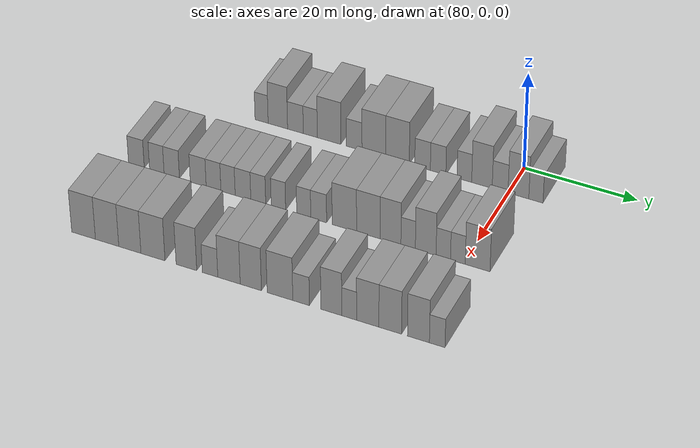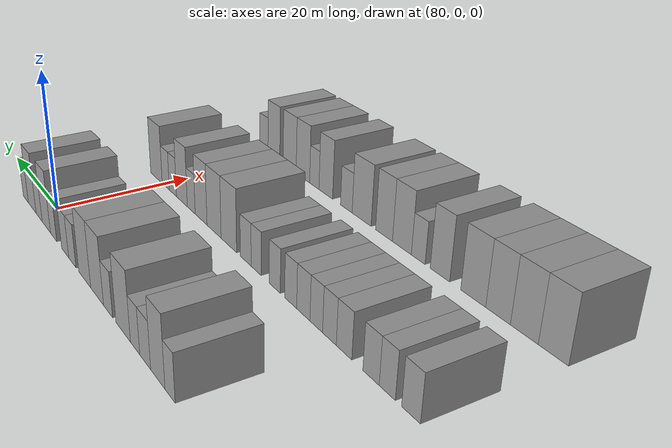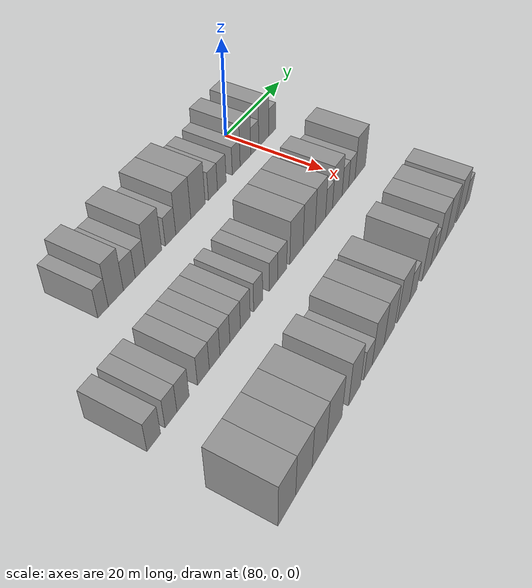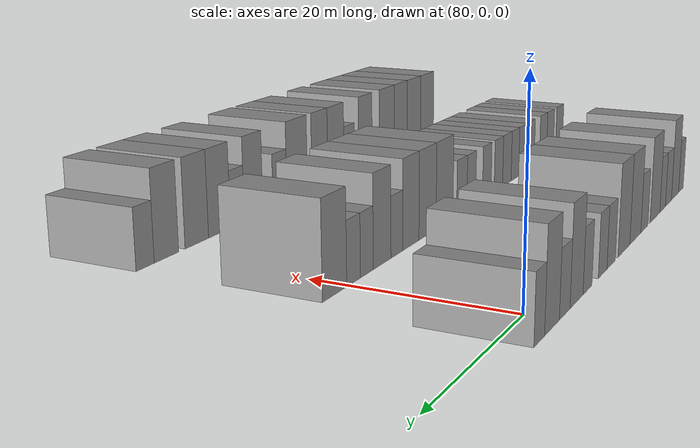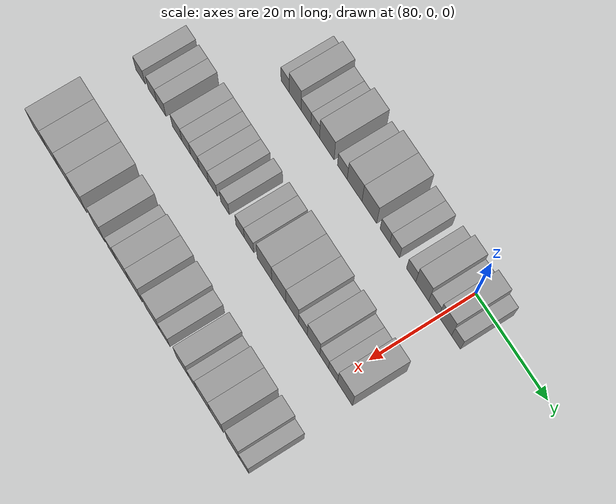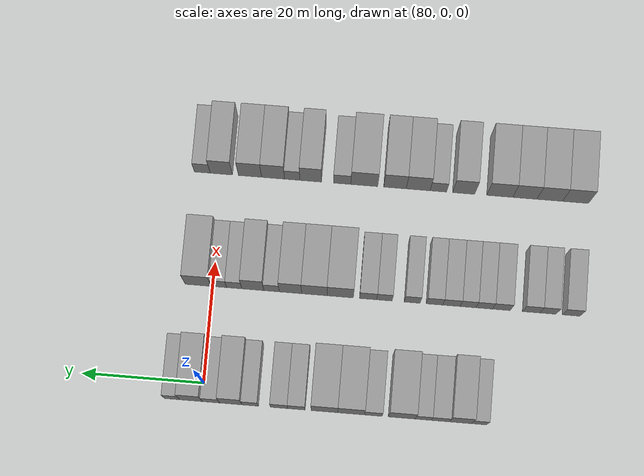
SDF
<sdf version="1.6">
 <world name="default">
  <model name="building_597">
   <static>1</static>
   <pose>82.0000 -45.0844 0 0.000000 0.000000 0.000000</pose>
   <link name="link">
    <pose>0 0 3.00 0 0 0</pose>
    <collision name="collision"><geometry><box><size>10.0000 2.4602 6.0000</size></box></geometry></collision>
    <visual name="visual">
     <cast_shadows>0</cast_shadows>
     <geometry><box><size>10.0000 2.4602 6.0000</size></box></geometry>
     <material>
      <script>
       <uri>model://grey_wall/materials/scripts</uri>
       <uri>model://grey_wall/materials/textures</uri>
       <name>vrc/grey_wall</name>
      </script>
     </material>
    </visual>
   </link>
  </model>
  <model name="building_598">
   <static>1</static>
   <pose>82.0000 -42.0354 0 0.000000 0.000000 0.000000</pose>
   <link name="link">
    <pose>0 0 4.50 0 0 0</pose>
    <collision name="collision"><geometry><box><size>10.0000 3.6379 9.0000</size></box></geometry></collision>
    <visual name="visual">
     <cast_shadows>0</cast_shadows>
     <geometry><box><size>10.0000 3.6379 9.0000</size></box></geometry>
     <material>
      <script>
       <uri>model://grey_wall/materials/scripts</uri>
       <uri>model://grey_wall/materials/textures</uri>
       <name>vrc/grey_wall</name>
      </script>
     </material>
    </visual>
   </link>
  </model>
  <model name="building_599">
   <static>1</static>
   <pose>82.0000 -38.7484 0 0.000000 0.000000 0.000000</pose>
   <link name="link">
    <pose>0 0 3.00 0 0 0</pose>
    <collision name="collision"><geometry><box><size>10.0000 2.9360 6.0000</size></box></geometry></collision>
    <visual name="visual">
     <cast_shadows>0</cast_shadows>
     <geometry><box><size>10.0000 2.9360 6.0000</size></box></geometry>
     <material>
      <script>
       <uri>model://grey_wall/materials/scripts</uri>
       <uri>model://grey_wall/materials/textures</uri>
       <name>vrc/grey_wall</name>
      </script>
     </material>
    </visual>
   </link>
  </model>
  <model name="building_600">
   <static>1</static>
   <pose>82.0000 -35.9781 0 0.000000 0.000000 0.000000</pose>
   <link name="link">
    <pose>0 0 3.00 0 0 0</pose>
    <collision name="collision"><geometry><box><size>10.0000 2.6046 6.0000</size></box></geometry></collision>
    <visual name="visual">
     <cast_shadows>0</cast_shadows>
     <geometry><box><size>10.0000 2.6046 6.0000</size></box></geometry>
     <material>
      <script>
       <uri>model://grey_wall/materials/scripts</uri>
       <uri>model://grey_wall/materials/textures</uri>
       <name>vrc/grey_wall</name>
      </script>
     </material>
    </visual>
   </link>
  </model>
  <model name="building_601">
   <static>1</static>
   <pose>82.0000 -32.5041 0 0.000000 0.000000 0.000000</pose>
   <link name="link">
    <pose>0 0 4.50 0 0 0</pose>
    <collision name="collision"><geometry><box><size>10.0000 4.3434 9.0000</size></box></geometry></collision>
    <visual name="visual">
     <cast_shadows>0</cast_shadows>
     <geometry><box><size>10.0000 4.3434 9.0000</size></box></geometry>
     <material>
      <script>
       <uri>model://grey_wall/materials/scripts</uri>
       <uri>model://grey_wall/materials/textures</uri>
       <name>vrc/grey_wall</name>
      </script>
     </material>
    </visual>
   </link>
  </model>
  <model name="building_602">
   <static>1</static>
   <pose>82.0000 -27.8852 0 0.000000 0.000000 0.000000</pose>
   <link name="link">
    <pose>0 0 3.00 0 0 0</pose>
    <collision name="collision"><geometry><box><size>10.0000 2.8943 6.0000</size></box></geometry></collision>
    <visual name="visual">
     <cast_shadows>0</cast_shadows>
     <geometry><box><size>10.0000 2.8943 6.0000</size></box></geometry>
     <material>
      <script>
       <uri>model://grey_wall/materials/scripts</uri>
       <uri>model://grey_wall/materials/textures</uri>
       <name>vrc/grey_wall</name>
      </script>
     </material>
    </visual>
   </link>
  </model>
  <model name="building_603">
   <static>1</static>
   <pose>82.0000 -24.2713 0 0.000000 0.000000 0.000000</pose>
   <link name="link">
    <pose>0 0 4.50 0 0 0</pose>
    <collision name="collision"><geometry><box><size>10.0000 4.3334 9.0000</size></box></geometry></collision>
    <visual name="visual">
     <cast_shadows>0</cast_shadows>
     <geometry><box><size>10.0000 4.3334 9.0000</size></box></geometry>
     <material>
      <script>
       <uri>model://grey_wall/materials/scripts</uri>
       <uri>model://grey_wall/materials/textures</uri>
       <name>vrc/grey_wall</name>
      </script>
     </material>
    </visual>
   </link>
  </model>
  <model name="building_604">
   <static>1</static>
   <pose>82.0000 -19.9559 0 0.000000 0.000000 0.000000</pose>
   <link name="link">
    <pose>0 0 4.50 0 0 0</pose>
    <collision name="collision"><geometry><box><size>10.0000 4.2974 9.0000</size></box></geometry></collision>
    <visual name="visual">
     <cast_shadows>0</cast_shadows>
     <geometry><box><size>10.0000 4.2974 9.0000</size></box></geometry>
     <material>
      <script>
       <uri>model://grey_wall/materials/scripts</uri>
       <uri>model://grey_wall/materials/textures</uri>
       <name>vrc/grey_wall</name>
      </script>
     </material>
    </visual>
   </link>
  </model>
  <model name="building_605">
   <static>1</static>
   <pose>82.0000 -15.3982 0 0.000000 0.000000 0.000000</pose>
   <link name="link">
    <pose>0 0 3.00 0 0 0</pose>
    <collision name="collision"><geometry><box><size>10.0000 2.8180 6.0000</size></box></geometry></collision>
    <visual name="visual">
     <cast_shadows>0</cast_shadows>
     <geometry><box><size>10.0000 2.8180 6.0000</size></box></geometry>
     <material>
      <script>
       <uri>model://grey_wall/materials/scripts</uri>
       <uri>model://grey_wall/materials/textures</uri>
       <name>vrc/grey_wall</name>
      </script>
     </material>
    </visual>
   </link>
  </model>
  <model name="building_606">
   <static>1</static>
   <pose>82.0000 -12.5891 0 0.000000 0.000000 0.000000</pose>
   <link name="link">
    <pose>0 0 3.00 0 0 0</pose>
    <collision name="collision"><geometry><box><size>10.0000 2.8003 6.0000</size></box></geometry></collision>
    <visual name="visual">
     <cast_shadows>0</cast_shadows>
     <geometry><box><size>10.0000 2.8003 6.0000</size></box></geometry>
     <material>
      <script>
       <uri>model://grey_wall/materials/scripts</uri>
       <uri>model://grey_wall/materials/textures</uri>
       <name>vrc/grey_wall</name>
      </script>
     </material>
    </visual>
   </link>
  </model>
  <model name="building_607">
   <static>1</static>
   <pose>82.0000 -7.8719 0 0.000000 0.000000 0.000000</pose>
   <link name="link">
    <pose>0 0 3.00 0 0 0</pose>
    <collision name="collision"><geometry><box><size>10.0000 2.6342 6.0000</size></box></geometry></collision>
    <visual name="visual">
     <cast_shadows>0</cast_shadows>
     <geometry><box><size>10.0000 2.6342 6.0000</size></box></geometry>
     <material>
      <script>
       <uri>model://grey_wall/materials/scripts</uri>
       <uri>model://grey_wall/materials/textures</uri>
       <name>vrc/grey_wall</name>
      </script>
     </material>
    </visual>
   </link>
  </model>
  <model name="building_608">
   <static>1</static>
   <pose>82.0000 -4.7250 0 0.000000 0.000000 0.000000</pose>
   <link name="link">
    <pose>0 0 4.50 0 0 0</pose>
    <collision name="collision"><geometry><box><size>10.0000 3.6595 9.0000</size></box></geometry></collision>
    <visual name="visual">
     <cast_shadows>0</cast_shadows>
     <geometry><box><size>10.0000 3.6595 9.0000</size></box></geometry>
     <material>
      <script>
       <uri>model://grey_wall/materials/scripts</uri>
       <uri>model://grey_wall/materials/textures</uri>
       <name>vrc/grey_wall</name>
      </script>
     </material>
    </visual>
   </link>
  </model>
  <model name="building_609">
   <static>1</static>
   <pose>82.0000 -1.4847 0 0.000000 0.000000 0.000000</pose>
   <link name="link">
    <pose>0 0 3.00 0 0 0</pose>
    <collision name="collision"><geometry><box><size>10.0000 2.8210 6.0000</size></box></geometry></collision>
    <visual name="visual">
     <cast_shadows>0</cast_shadows>
     <geometry><box><size>10.0000 2.8210 6.0000</size></box></geometry>
     <material>
      <script>
       <uri>model://grey_wall/materials/scripts</uri>
       <uri>model://grey_wall/materials/textures</uri>
       <name>vrc/grey_wall</name>
      </script>
     </material>
    </visual>
   </link>
  </model>
  <model name="building_610">
   <static>1</static>
   <pose>82.0000 1.7644 0 0.000000 0.000000 0.000000</pose>
   <link name="link">
    <pose>0 0 4.50 0 0 0</pose>
    <collision name="collision"><geometry><box><size>10.0000 3.6772 9.0000</size></box></geometry></collision>
    <visual name="visual">
     <cast_shadows>0</cast_shadows>
     <geometry><box><size>10.0000 3.6772 9.0000</size></box></geometry>
     <material>
      <script>
       <uri>model://grey_wall/materials/scripts</uri>
       <uri>model://grey_wall/materials/textures</uri>
       <name>vrc/grey_wall</name>
      </script>
     </material>
    </visual>
   </link>
  </model>
  <model name="building_611">
   <static>1</static>
   <pose>82.0000 4.8568 0 0.000000 0.000000 0.000000</pose>
   <link name="link">
    <pose>0 0 3.00 0 0 0</pose>
    <collision name="collision"><geometry><box><size>10.0000 2.5077 6.0000</size></box></geometry></collision>
    <visual name="visual">
     <cast_shadows>0</cast_shadows>
     <geometry><box><size>10.0000 2.5077 6.0000</size></box></geometry>
     <material>
      <script>
       <uri>model://grey_wall/materials/scripts</uri>
       <uri>model://grey_wall/materials/textures</uri>
       <name>vrc/grey_wall</name>
      </script>
     </material>
    </visual>
   </link>
  </model>
  <model name="building_766">
   <static>1</static>
   <pose>101.0000 -58.9952 0 0.000000 0.000000 0.000000</pose>
   <link name="link">
    <pose>0 0 3.00 0 0 0</pose>
    <collision name="collision"><geometry><box><size>10.0000 2.9431 6.0000</size></box></geometry></collision>
    <visual name="visual">
     <cast_shadows>0</cast_shadows>
     <geometry><box><size>10.0000 2.9431 6.0000</size></box></geometry>
     <material>
      <script>
       <uri>model://grey_wall/materials/scripts</uri>
       <uri>model://grey_wall/materials/textures</uri>
       <name>vrc/grey_wall</name>
      </script>
     </material>
    </visual>
   </link>
  </model>
  <model name="building_767">
   <static>1</static>
   <pose>101.0000 -55.1758 0 0.000000 0.000000 0.000000</pose>
   <link name="link">
    <pose>0 0 3.00 0 0 0</pose>
    <collision name="collision"><geometry><box><size>10.0000 2.6956 6.0000</size></box></geometry></collision>
    <visual name="visual">
     <cast_shadows>0</cast_shadows>
     <geometry><box><size>10.0000 2.6956 6.0000</size></box></geometry>
     <material>
      <script>
       <uri>model://grey_wall/materials/scripts</uri>
       <uri>model://grey_wall/materials/textures</uri>
       <name>vrc/grey_wall</name>
      </script>
     </material>
    </visual>
   </link>
  </model>
  <model name="building_768">
   <static>1</static>
   <pose>101.0000 -52.4036 0 0.000000 0.000000 0.000000</pose>
   <link name="link">
    <pose>0 0 3.00 0 0 0</pose>
    <collision name="collision"><geometry><box><size>10.0000 2.8489 6.0000</size></box></geometry></collision>
    <visual name="visual">
     <cast_shadows>0</cast_shadows>
     <geometry><box><size>10.0000 2.8489 6.0000</size></box></geometry>
     <material>
      <script>
       <uri>model://grey_wall/materials/scripts</uri>
       <uri>model://grey_wall/materials/textures</uri>
       <name>vrc/grey_wall</name>
      </script>
     </material>
    </visual>
   </link>
  </model>
  <model name="building_769">
   <static>1</static>
   <pose>101.0000 -47.5086 0 0.000000 0.000000 0.000000</pose>
   <link name="link">
    <pose>0 0 3.00 0 0 0</pose>
    <collision name="collision"><geometry><box><size>10.0000 2.9412 6.0000</size></box></geometry></collision>
    <visual name="visual">
     <cast_shadows>0</cast_shadows>
     <geometry><box><size>10.0000 2.9412 6.0000</size></box></geometry>
     <material>
      <script>
       <uri>model://grey_wall/materials/scripts</uri>
       <uri>model://grey_wall/materials/textures</uri>
       <name>vrc/grey_wall</name>
      </script>
     </material>
    </visual>
   </link>
  </model>
  <model name="building_770">
   <static>1</static>
   <pose>101.0000 -44.6798 0 0.000000 0.000000 0.000000</pose>
   <link name="link">
    <pose>0 0 3.00 0 0 0</pose>
    <collision name="collision"><geometry><box><size>10.0000 2.7165 6.0000</size></box></geometry></collision>
    <visual name="visual">
     <cast_shadows>0</cast_shadows>
     <geometry><box><size>10.0000 2.7165 6.0000</size></box></geometry>
     <material>
      <script>
       <uri>model://grey_wall/materials/scripts</uri>
       <uri>model://grey_wall/materials/textures</uri>
       <name>vrc/grey_wall</name>
      </script>
     </material>
    </visual>
   </link>
  </model>
  <model name="building_771">
   <static>1</static>
   <pose>101.0000 -42.0147 0 0.000000 0.000000 0.000000</pose>
   <link name="link">
    <pose>0 0 3.00 0 0 0</pose>
    <collision name="collision"><geometry><box><size>10.0000 2.6136 6.0000</size></box></geometry></collision>
    <visual name="visual">
     <cast_shadows>0</cast_shadows>
     <geometry><box><size>10.0000 2.6136 6.0000</size></box></geometry>
     <material>
      <script>
       <uri>model://grey_wall/materials/scripts</uri>
       <uri>model://grey_wall/materials/textures</uri>
       <name>vrc/grey_wall</name>
      </script>
     </material>
    </visual>
   </link>
  </model>
  <model name="building_772">
   <static>1</static>
   <pose>101.0000 -39.2804 0 0.000000 0.000000 0.000000</pose>
   <link name="link">
    <pose>0 0 3.00 0 0 0</pose>
    <collision name="collision"><geometry><box><size>10.0000 2.8549 6.0000</size></box></geometry></collision>
    <visual name="visual">
     <cast_shadows>0</cast_shadows>
     <geometry><box><size>10.0000 2.8549 6.0000</size></box></geometry>
     <material>
      <script>
       <uri>model://grey_wall/materials/scripts</uri>
       <uri>model://grey_wall/materials/textures</uri>
       <name>vrc/grey_wall</name>
      </script>
     </material>
    </visual>
   </link>
  </model>
  <model name="building_773">
   <static>1</static>
   <pose>101.0000 -36.4974 0 0.000000 0.000000 0.000000</pose>
   <link name="link">
    <pose>0 0 3.00 0 0 0</pose>
    <collision name="collision"><geometry><box><size>10.0000 2.7112 6.0000</size></box></geometry></collision>
    <visual name="visual">
     <cast_shadows>0</cast_shadows>
     <geometry><box><size>10.0000 2.7112 6.0000</size></box></geometry>
     <material>
      <script>
       <uri>model://grey_wall/materials/scripts</uri>
       <uri>model://grey_wall/materials/textures</uri>
       <name>vrc/grey_wall</name>
      </script>
     </material>
    </visual>
   </link>
  </model>
  <model name="building_774">
   <static>1</static>
   <pose>101.0000 -32.8344 0 0.000000 0.000000 0.000000</pose>
   <link name="link">
    <pose>0 0 3.00 0 0 0</pose>
    <collision name="collision"><geometry><box><size>10.0000 2.6148 6.0000</size></box></geometry></collision>
    <visual name="visual">
     <cast_shadows>0</cast_shadows>
     <geometry><box><size>10.0000 2.6148 6.0000</size></box></geometry>
     <material>
      <script>
       <uri>model://grey_wall/materials/scripts</uri>
       <uri>model://grey_wall/materials/textures</uri>
       <name>vrc/grey_wall</name>
      </script>
     </material>
    </visual>
   </link>
  </model>
  <model name="building_775">
   <static>1</static>
   <pose>101.0000 -28.2604 0 0.000000 0.000000 0.000000</pose>
   <link name="link">
    <pose>0 0 3.00 0 0 0</pose>
    <collision name="collision"><geometry><box><size>10.0000 2.5332 6.0000</size></box></geometry></collision>
    <visual name="visual">
     <cast_shadows>0</cast_shadows>
     <geometry><box><size>10.0000 2.5332 6.0000</size></box></geometry>
     <material>
      <script>
       <uri>model://grey_wall/materials/scripts</uri>
       <uri>model://grey_wall/materials/textures</uri>
       <name>vrc/grey_wall</name>
      </script>
     </material>
    </visual>
   </link>
  </model>
  <model name="building_776">
   <static>1</static>
   <pose>101.0000 -25.5738 0 0.000000 0.000000 0.000000</pose>
   <link name="link">
    <pose>0 0 3.00 0 0 0</pose>
    <collision name="collision"><geometry><box><size>10.0000 2.8400 6.0000</size></box></geometry></collision>
    <visual name="visual">
     <cast_shadows>0</cast_shadows>
     <geometry><box><size>10.0000 2.8400 6.0000</size></box></geometry>
     <material>
      <script>
       <uri>model://grey_wall/materials/scripts</uri>
       <uri>model://grey_wall/materials/textures</uri>
       <name>vrc/grey_wall</name>
      </script>
     </material>
    </visual>
   </link>
  </model>
  <model name="building_777">
   <static>1</static>
   <pose>101.0000 -20.9790 0 0.000000 0.000000 0.000000</pose>
   <link name="link">
    <pose>0 0 4.50 0 0 0</pose>
    <collision name="collision"><geometry><box><size>10.0000 4.3495 9.0000</size></box></geometry></collision>
    <visual name="visual">
     <cast_shadows>0</cast_shadows>
     <geometry><box><size>10.0000 4.3495 9.0000</size></box></geometry>
     <material>
      <script>
       <uri>model://grey_wall/materials/scripts</uri>
       <uri>model://grey_wall/materials/textures</uri>
       <name>vrc/grey_wall</name>
      </script>
     </material>
    </visual>
   </link>
  </model>
  <model name="building_778">
   <static>1</static>
   <pose>101.0000 -16.7229 0 0.000000 0.000000 0.000000</pose>
   <link name="link">
    <pose>0 0 4.50 0 0 0</pose>
    <collision name="collision"><geometry><box><size>10.0000 4.1627 9.0000</size></box></geometry></collision>
    <visual name="visual">
     <cast_shadows>0</cast_shadows>
     <geometry><box><size>10.0000 4.1627 9.0000</size></box></geometry>
     <material>
      <script>
       <uri>model://grey_wall/materials/scripts</uri>
       <uri>model://grey_wall/materials/textures</uri>
       <name>vrc/grey_wall</name>
      </script>
     </material>
    </visual>
   </link>
  </model>
  <model name="building_779">
   <static>1</static>
   <pose>101.0000 -12.7955 0 0.000000 0.000000 0.000000</pose>
   <link name="link">
    <pose>0 0 4.50 0 0 0</pose>
    <collision name="collision"><geometry><box><size>10.0000 3.6922 9.0000</size></box></geometry></collision>
    <visual name="visual">
     <cast_shadows>0</cast_shadows>
     <geometry><box><size>10.0000 3.6922 9.0000</size></box></geometry>
     <material>
      <script>
       <uri>model://grey_wall/materials/scripts</uri>
       <uri>model://grey_wall/materials/textures</uri>
       <name>vrc/grey_wall</name>
      </script>
     </material>
    </visual>
   </link>
  </model>
  <model name="building_780">
   <static>1</static>
   <pose>101.0000 -9.6807 0 0.000000 0.000000 0.000000</pose>
   <link name="link">
    <pose>0 0 3.00 0 0 0</pose>
    <collision name="collision"><geometry><box><size>10.0000 2.5374 6.0000</size></box></geometry></collision>
    <visual name="visual">
     <cast_shadows>0</cast_shadows>
     <geometry><box><size>10.0000 2.5374 6.0000</size></box></geometry>
     <material>
      <script>
       <uri>model://grey_wall/materials/scripts</uri>
       <uri>model://grey_wall/materials/textures</uri>
       <name>vrc/grey_wall</name>
      </script>
     </material>
    </visual>
   </link>
  </model>
  <model name="building_781">
   <static>1</static>
   <pose>101.0000 -6.5957 0 0.000000 0.000000 0.000000</pose>
   <link name="link">
    <pose>0 0 4.50 0 0 0</pose>
    <collision name="collision"><geometry><box><size>10.0000 3.6326 9.0000</size></box></geometry></collision>
    <visual name="visual">
     <cast_shadows>0</cast_shadows>
     <geometry><box><size>10.0000 3.6326 9.0000</size></box></geometry>
     <material>
      <script>
       <uri>model://grey_wall/materials/scripts</uri>
       <uri>model://grey_wall/materials/textures</uri>
       <name>vrc/grey_wall</name>
      </script>
     </material>
    </visual>
   </link>
  </model>
  <model name="building_782">
   <static>1</static>
   <pose>101.0000 -3.5245 0 0.000000 0.000000 0.000000</pose>
   <link name="link">
    <pose>0 0 3.00 0 0 0</pose>
    <collision name="collision"><geometry><box><size>10.0000 2.5097 6.0000</size></box></geometry></collision>
    <visual name="visual">
     <cast_shadows>0</cast_shadows>
     <geometry><box><size>10.0000 2.5097 6.0000</size></box></geometry>
     <material>
      <script>
       <uri>model://grey_wall/materials/scripts</uri>
       <uri>model://grey_wall/materials/textures</uri>
       <name>vrc/grey_wall</name>
      </script>
     </material>
    </visual>
   </link>
  </model>
  <model name="building_783">
   <static>1</static>
   <pose>101.0000 -0.9851 0 0.000000 0.000000 0.000000</pose>
   <link name="link">
    <pose>0 0 3.00 0 0 0</pose>
    <collision name="collision"><geometry><box><size>10.0000 2.5691 6.0000</size></box></geometry></collision>
    <visual name="visual">
     <cast_shadows>0</cast_shadows>
     <geometry><box><size>10.0000 2.5691 6.0000</size></box></geometry>
     <material>
      <script>
       <uri>model://grey_wall/materials/scripts</uri>
       <uri>model://grey_wall/materials/textures</uri>
       <name>vrc/grey_wall</name>
      </script>
     </material>
    </visual>
   </link>
  </model>
  <model name="building_784">
   <static>1</static>
   <pose>101.0000 2.4388 0 0.000000 0.000000 0.000000</pose>
   <link name="link">
    <pose>0 0 4.50 0 0 0</pose>
    <collision name="collision"><geometry><box><size>10.0000 4.2785 9.0000</size></box></geometry></collision>
    <visual name="visual">
     <cast_shadows>0</cast_shadows>
     <geometry><box><size>10.0000 4.2785 9.0000</size></box></geometry>
     <material>
      <script>
       <uri>model://grey_wall/materials/scripts</uri>
       <uri>model://grey_wall/materials/textures</uri>
       <name>vrc/grey_wall</name>
      </script>
     </material>
    </visual>
   </link>
  </model>
  <model name="building_946">
   <static>1</static>
   <pose>120.0000 -58.6727 0 0.000000 0.000000 0.000000</pose>
   <link name="link">
    <pose>0 0 4.50 0 0 0</pose>
    <collision name="collision"><geometry><box><size>10.0000 4.3464 9.0000</size></box></geometry></collision>
    <visual name="visual">
     <cast_shadows>0</cast_shadows>
     <geometry><box><size>10.0000 4.3464 9.0000</size></box></geometry>
     <material>
      <script>
       <uri>model://grey_wall/materials/scripts</uri>
       <uri>model://grey_wall/materials/textures</uri>
       <name>vrc/grey_wall</name>
      </script>
     </material>
    </visual>
   </link>
  </model>
  <model name="building_947">
   <static>1</static>
   <pose>120.0000 -54.3715 0 0.000000 0.000000 0.000000</pose>
   <link name="link">
    <pose>0 0 4.50 0 0 0</pose>
    <collision name="collision"><geometry><box><size>10.0000 4.2560 9.0000</size></box></geometry></collision>
    <visual name="visual">
     <cast_shadows>0</cast_shadows>
     <geometry><box><size>10.0000 4.2560 9.0000</size></box></geometry>
     <material>
      <script>
       <uri>model://grey_wall/materials/scripts</uri>
       <uri>model://grey_wall/materials/textures</uri>
       <name>vrc/grey_wall</name>
      </script>
     </material>
    </visual>
   </link>
  </model>
  <model name="building_948">
   <static>1</static>
   <pose>120.0000 -50.2305 0 0.000000 0.000000 0.000000</pose>
   <link name="link">
    <pose>0 0 4.50 0 0 0</pose>
    <collision name="collision"><geometry><box><size>10.0000 4.0260 9.0000</size></box></geometry></collision>
    <visual name="visual">
     <cast_shadows>0</cast_shadows>
     <geometry><box><size>10.0000 4.0260 9.0000</size></box></geometry>
     <material>
      <script>
       <uri>model://grey_wall/materials/scripts</uri>
       <uri>model://grey_wall/materials/textures</uri>
       <name>vrc/grey_wall</name>
      </script>
     </material>
    </visual>
   </link>
  </model>
  <model name="building_949">
   <static>1</static>
   <pose>120.0000 -46.0504 0 0.000000 0.000000 0.000000</pose>
   <link name="link">
    <pose>0 0 4.50 0 0 0</pose>
    <collision name="collision"><geometry><box><size>10.0000 4.3341 9.0000</size></box></geometry></collision>
    <visual name="visual">
     <cast_shadows>0</cast_shadows>
     <geometry><box><size>10.0000 4.3341 9.0000</size></box></geometry>
     <material>
      <script>
       <uri>model://grey_wall/materials/scripts</uri>
       <uri>model://grey_wall/materials/textures</uri>
       <name>vrc/grey_wall</name>
      </script>
     </material>
    </visual>
   </link>
  </model>
  <model name="building_950">
   <static>1</static>
   <pose>120.0000 -40.0371 0 0.000000 0.000000 0.000000</pose>
   <link name="link">
    <pose>0 0 4.50 0 0 0</pose>
    <collision name="collision"><geometry><box><size>10.0000 3.6925 9.0000</size></box></geometry></collision>
    <visual name="visual">
     <cast_shadows>0</cast_shadows>
     <geometry><box><size>10.0000 3.6925 9.0000</size></box></geometry>
     <material>
      <script>
       <uri>model://grey_wall/materials/scripts</uri>
       <uri>model://grey_wall/materials/textures</uri>
       <name>vrc/grey_wall</name>
      </script>
     </material>
    </visual>
   </link>
  </model>
  <model name="building_951">
   <static>1</static>
   <pose>120.0000 -35.8162 0 0.000000 0.000000 0.000000</pose>
   <link name="link">
    <pose>0 0 3.00 0 0 0</pose>
    <collision name="collision"><geometry><box><size>10.0000 2.7495 6.0000</size></box></geometry></collision>
    <visual name="visual">
     <cast_shadows>0</cast_shadows>
     <geometry><box><size>10.0000 2.7495 6.0000</size></box></geometry>
     <material>
      <script>
       <uri>model://grey_wall/materials/scripts</uri>
       <uri>model://grey_wall/materials/textures</uri>
       <name>vrc/grey_wall</name>
      </script>
     </material>
    </visual>
   </link>
  </model>
  <model name="building_952">
   <static>1</static>
   <pose>120.0000 -32.4524 0 0.000000 0.000000 0.000000</pose>
   <link name="link">
    <pose>0 0 4.50 0 0 0</pose>
    <collision name="collision"><geometry><box><size>10.0000 3.9781 9.0000</size></box></geometry></collision>
    <visual name="visual">
     <cast_shadows>0</cast_shadows>
     <geometry><box><size>10.0000 3.9781 9.0000</size></box></geometry>
     <material>
      <script>
       <uri>model://grey_wall/materials/scripts</uri>
       <uri>model://grey_wall/materials/textures</uri>
       <name>vrc/grey_wall</name>
      </script>
     </material>
    </visual>
   </link>
  </model>
  <model name="building_953">
   <static>1</static>
   <pose>120.0000 -28.5904 0 0.000000 0.000000 0.000000</pose>
   <link name="link">
    <pose>0 0 4.50 0 0 0</pose>
    <collision name="collision"><geometry><box><size>10.0000 3.7458 9.0000</size></box></geometry></collision>
    <visual name="visual">
     <cast_shadows>0</cast_shadows>
     <geometry><box><size>10.0000 3.7458 9.0000</size></box></geometry>
     <material>
      <script>
       <uri>model://grey_wall/materials/scripts</uri>
       <uri>model://grey_wall/materials/textures</uri>
       <name>vrc/grey_wall</name>
      </script>
     </material>
    </visual>
   </link>
  </model>
  <model name="building_954">
   <static>1</static>
   <pose>120.0000 -23.4704 0 0.000000 0.000000 0.000000</pose>
   <link name="link">
    <pose>0 0 4.50 0 0 0</pose>
    <collision name="collision"><geometry><box><size>10.0000 4.4942 9.0000</size></box></geometry></collision>
    <visual name="visual">
     <cast_shadows>0</cast_shadows>
     <geometry><box><size>10.0000 4.4942 9.0000</size></box></geometry>
     <material>
      <script>
       <uri>model://grey_wall/materials/scripts</uri>
       <uri>model://grey_wall/materials/textures</uri>
       <name>vrc/grey_wall</name>
      </script>
     </material>
    </visual>
   </link>
  </model>
  <model name="building_955">
   <static>1</static>
   <pose>120.0000 -19.7763 0 0.000000 0.000000 0.000000</pose>
   <link name="link">
    <pose>0 0 3.00 0 0 0</pose>
    <collision name="collision"><geometry><box><size>10.0000 2.8941 6.0000</size></box></geometry></collision>
    <visual name="visual">
     <cast_shadows>0</cast_shadows>
     <geometry><box><size>10.0000 2.8941 6.0000</size></box></geometry>
     <material>
      <script>
       <uri>model://grey_wall/materials/scripts</uri>
       <uri>model://grey_wall/materials/textures</uri>
       <name>vrc/grey_wall</name>
      </script>
     </material>
    </visual>
   </link>
  </model>
  <model name="building_956">
   <static>1</static>
   <pose>120.0000 -14.5264 0 0.000000 0.000000 0.000000</pose>
   <link name="link">
    <pose>0 0 4.50 0 0 0</pose>
    <collision name="collision"><geometry><box><size>10.0000 3.6056 9.0000</size></box></geometry></collision>
    <visual name="visual">
     <cast_shadows>0</cast_shadows>
     <geometry><box><size>10.0000 3.6056 9.0000</size></box></geometry>
     <material>
      <script>
       <uri>model://grey_wall/materials/scripts</uri>
       <uri>model://grey_wall/materials/textures</uri>
       <name>vrc/grey_wall</name>
      </script>
     </material>
    </visual>
   </link>
  </model>
  <model name="building_957">
   <static>1</static>
   <pose>120.0000 -11.4469 0 0.000000 0.000000 0.000000</pose>
   <link name="link">
    <pose>0 0 3.00 0 0 0</pose>
    <collision name="collision"><geometry><box><size>10.0000 2.5535 6.0000</size></box></geometry></collision>
    <visual name="visual">
     <cast_shadows>0</cast_shadows>
     <geometry><box><size>10.0000 2.5535 6.0000</size></box></geometry>
     <material>
      <script>
       <uri>model://grey_wall/materials/scripts</uri>
       <uri>model://grey_wall/materials/textures</uri>
       <name>vrc/grey_wall</name>
      </script>
     </material>
    </visual>
   </link>
  </model>
  <model name="building_958">
   <static>1</static>
   <pose>120.0000 -8.2546 0 0.000000 0.000000 0.000000</pose>
   <link name="link">
    <pose>0 0 4.50 0 0 0</pose>
    <collision name="collision"><geometry><box><size>10.0000 3.8311 9.0000</size></box></geometry></collision>
    <visual name="visual">
     <cast_shadows>0</cast_shadows>
     <geometry><box><size>10.0000 3.8311 9.0000</size></box></geometry>
     <material>
      <script>
       <uri>model://grey_wall/materials/scripts</uri>
       <uri>model://grey_wall/materials/textures</uri>
       <name>vrc/grey_wall</name>
      </script>
     </material>
    </visual>
   </link>
  </model>
  <model name="building_959">
   <static>1</static>
   <pose>120.0000 -4.4006 0 0.000000 0.000000 0.000000</pose>
   <link name="link">
    <pose>0 0 4.50 0 0 0</pose>
    <collision name="collision"><geometry><box><size>10.0000 3.8770 9.0000</size></box></geometry></collision>
    <visual name="visual">
     <cast_shadows>0</cast_shadows>
     <geometry><box><size>10.0000 3.8770 9.0000</size></box></geometry>
     <material>
      <script>
       <uri>model://grey_wall/materials/scripts</uri>
       <uri>model://grey_wall/materials/textures</uri>
       <name>vrc/grey_wall</name>
      </script>
     </material>
    </visual>
   </link>
  </model>
  <model name="building_960">
   <static>1</static>
   <pose>120.0000 0.3996 0 0.000000 0.000000 0.000000</pose>
   <link name="link">
    <pose>0 0 4.50 0 0 0</pose>
    <collision name="collision"><geometry><box><size>10.0000 3.7232 9.0000</size></box></geometry></collision>
    <visual name="visual">
     <cast_shadows>0</cast_shadows>
     <geometry><box><size>10.0000 3.7232 9.0000</size></box></geometry>
     <material>
      <script>
       <uri>model://grey_wall/materials/scripts</uri>
       <uri>model://grey_wall/materials/textures</uri>
       <name>vrc/grey_wall</name>
      </script>
     </material>
    </visual>
   </link>
  </model>
  <model name="building_961">
   <static>1</static>
   <pose>120.0000 3.5802 0 0.000000 0.000000 0.000000</pose>
   <link name="link">
    <pose>0 0 3.00 0 0 0</pose>
    <collision name="collision"><geometry><box><size>10.0000 2.6379 6.0000</size></box></geometry></collision>
    <visual name="visual">
     <cast_shadows>0</cast_shadows>
     <geometry><box><size>10.0000 2.6379 6.0000</size></box></geometry>
     <material>
      <script>
       <uri>model://grey_wall/materials/scripts</uri>
       <uri>model://grey_wall/materials/textures</uri>
       <name>vrc/grey_wall</name>
      </script>
     </material>
    </visual>
   </link>
  </model>
 </world>
</sdf>
